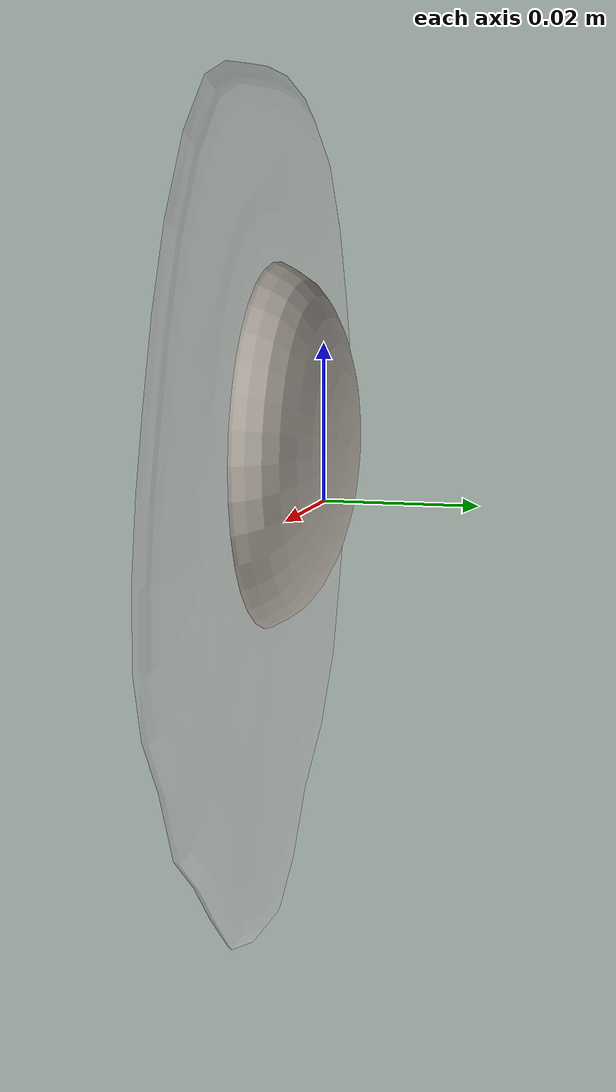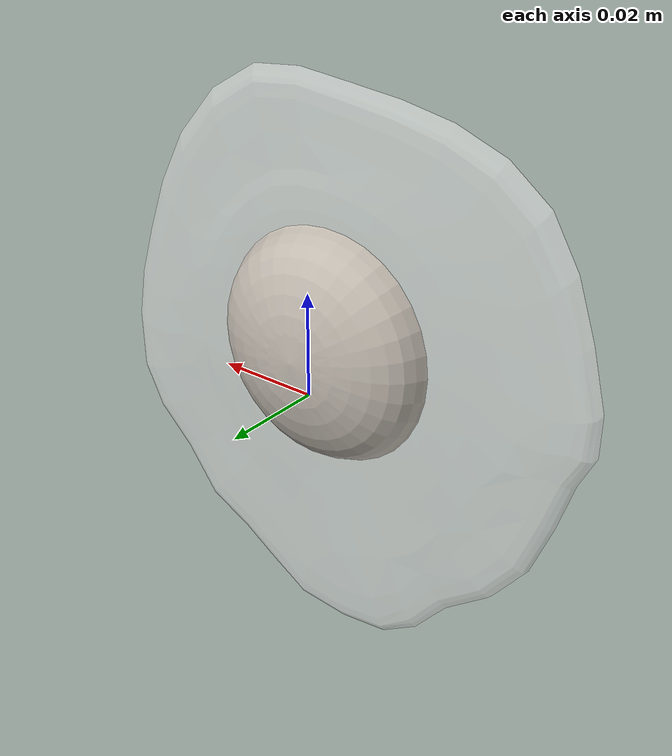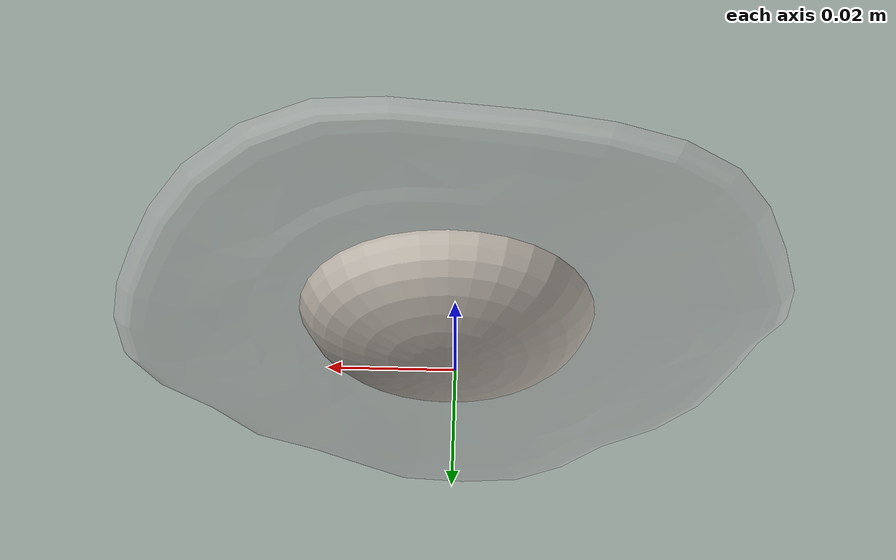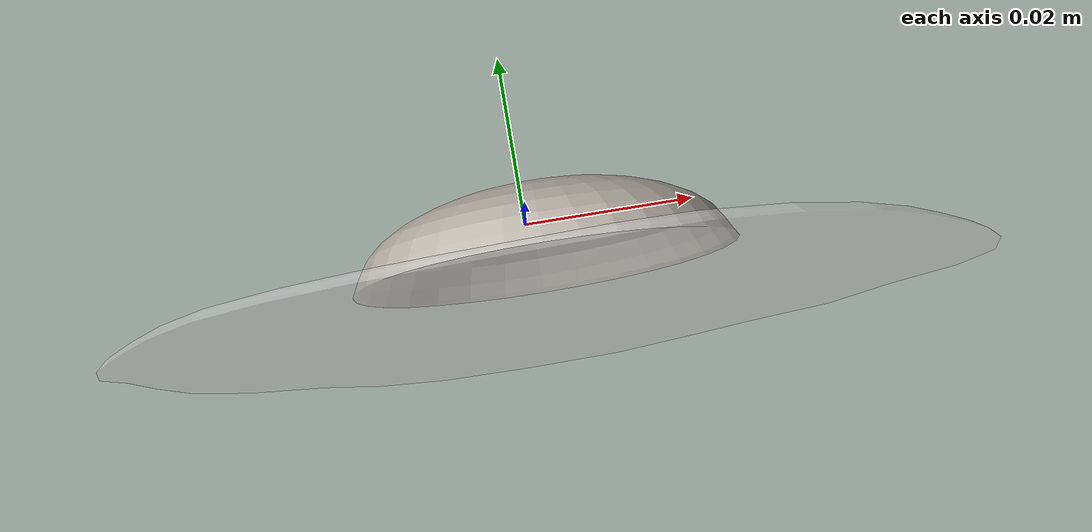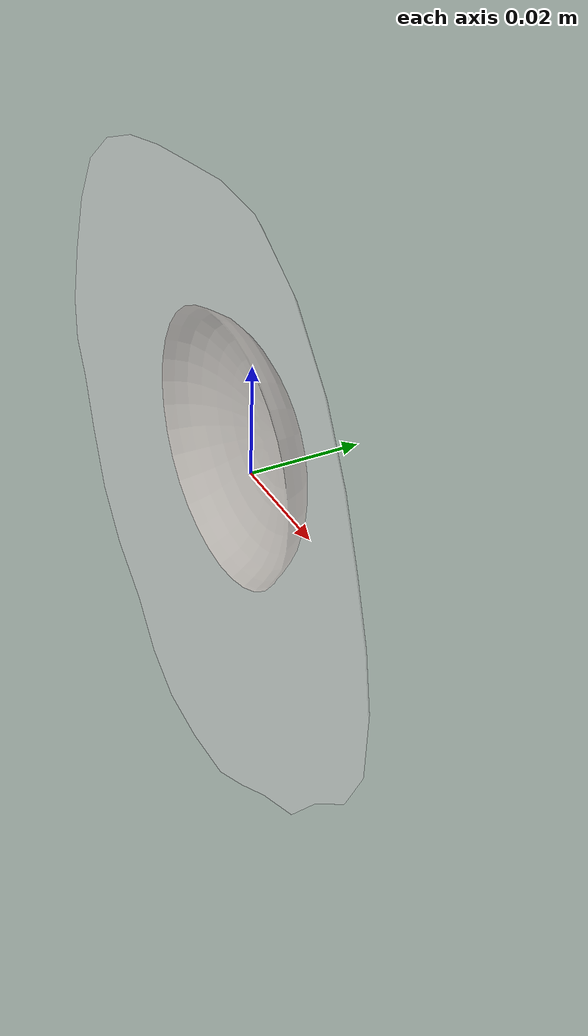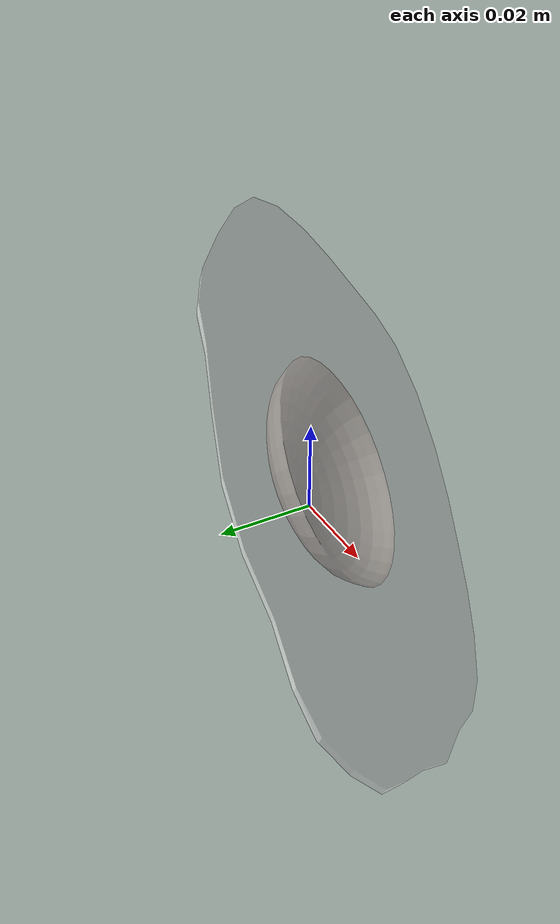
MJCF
<mujoco model="Egg_Cracked_29">
  <compiler autolimits="true" boundmass="0.01" angle="radian"/>
  <default>
    <default class="/">
      <default class="__VISUAL_MJT__">
        <geom contype="0" conaffinity="0" group="0"/>
      </default>
      <default class="__STRUCTURAL_MJT__">
        <geom contype="8" conaffinity="15" group="4" friction="0.90000000000000002 0.90000000000000002 0.001" solref="0.025000000000000001 1" solimp="0.998 0.998 0.001"/>
      </default>
      <default class="__DYNAMIC_MJT__">
        <geom contype="1" conaffinity="15" group="4" friction="0.90000000000000002 0.90000000000000002 0.001" solref="0.025000000000000001 1" solimp="0.998 0.998 0.001"/>
      </default>
    </default>
  </default>
  <asset>
    <texture name="Fried_Egg_White_Uncooked_Mat" type="2d" file="Fried_Egg_AlbedoTransparency.png"/>
    <material name="material_Fried_Egg_White_Uncooked_Mat" class="/" texture="Fried_Egg_White_Uncooked_Mat" specular="0.5" shininess="0.5" rgba="1 1 1 0.5"/>
    <texture name="Fried_Egg_Yolk_Mat" type="2d" file="Fried_Egg_AlbedoTransparency.png"/>
    <material name="material_Fried_Egg_Yolk_Mat" class="/" texture="Fried_Egg_Yolk_Mat" specular="0.5" shininess="0.5" rgba="1 1 1 1"/>
    <mesh name="Egg_Cracked_29_fried_egg_29_0" class="/" file="Egg_Cracked_29_fried_egg_29/Egg_Cracked_29_fried_egg_29_0.obj" scale="1 1 1"/>
    <mesh name="Egg_Cracked_29_fried_egg_29_1" class="/" file="Egg_Cracked_29_fried_egg_29/Egg_Cracked_29_fried_egg_29_1.obj" scale="1 1 1"/>
  </asset>
  <worldbody>
    <body name="Egg_Cracked_29">
      <joint name="Egg_Cracked_29_free" class="/" type="free" pos="0 0 0" axis="0 0 1" stiffness="0" range="0 0" armature="0" damping="0.10000000000000001" frictionloss="0"/>
      <body name="Egg_Cracked_29_fried_egg_29" pos="0.00063000000000000003 -0.01023 0.0069499999999999996" quat="1 0 0 0">
        <geom name="Egg_Cracked_29_fried_egg_29_0" class="__VISUAL_MJT__" type="mesh" material="material_Fried_Egg_White_Uncooked_Mat" shellinertia="false" mesh="Egg_Cracked_29_fried_egg_29_0"/>
        <geom name="Egg_Cracked_29_fried_egg_29_1" class="__VISUAL_MJT__" type="mesh" material="material_Fried_Egg_Yolk_Mat" shellinertia="false" mesh="Egg_Cracked_29_fried_egg_29_1"/>
        <geom name="Egg_Cracked_29_PrimitiveCollider_0" class="__DYNAMIC_MJT__" type="box" size="0.054280959069728851 0.010231256484985352 0.056814849376678467" rgba="0 1 0 1" pos="0.00063487142324447632 0.010231256484985352 -0.0069471001625061035" quat="1 0 0 0"/>
      </body>
    </body>
  </worldbody>
</mujoco>
